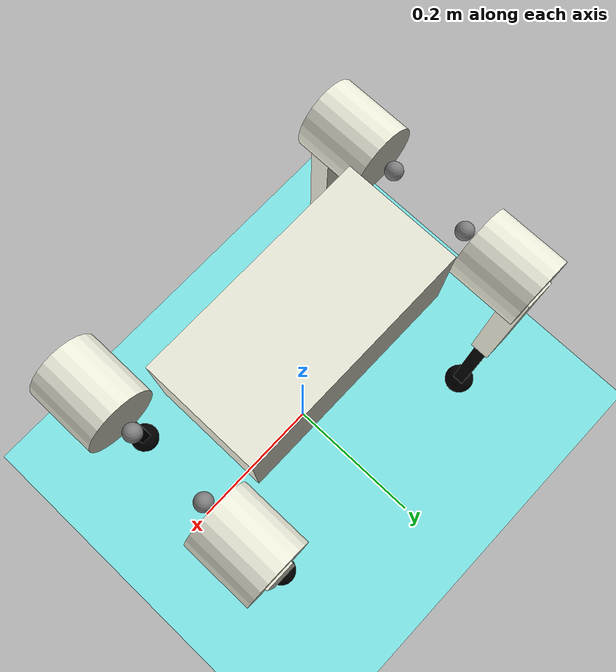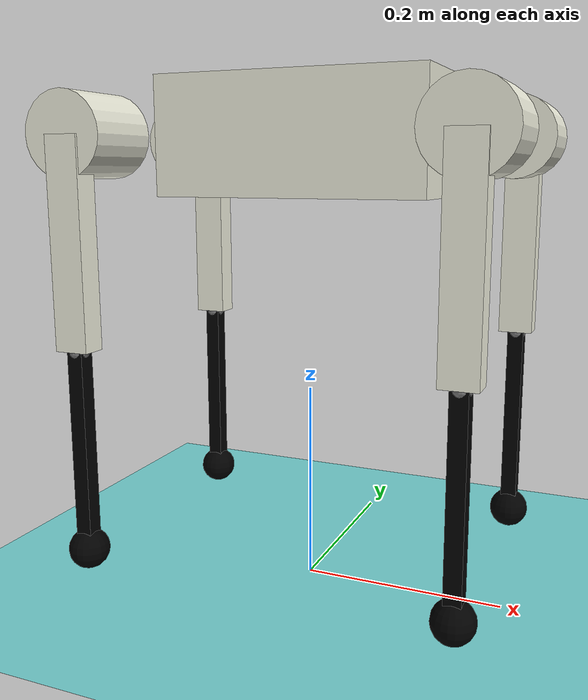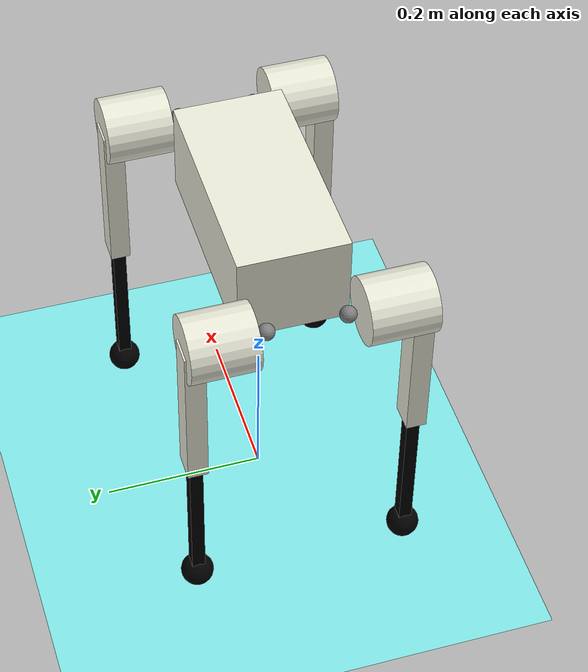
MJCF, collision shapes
<mujoco model="a1_description">
    <compiler angle="radian" eulerseq='xyz' meshdir="a1mesh/" />
    <visual>
        <!--headlight ambient="0.5 0.5 0.5"/-->
        <!--headlight diffuse="0.4 0.4 0.4"/-->
    </visual>
    <size njmax="500" nconmax="100" />
    <option gravity='0 0 -9.81' iterations='50' solver='Newton' timestep='0.0005'/>

    <default>
        <geom contype="1" conaffinity="1" friction="0.6 0.3 0.3" rgba="0.5 0.6 0.7 1" margin="0.001" group="0"/>

        <light castshadow="false" diffuse="1 1 1"/>
        <motor ctrlrange="-33.5 33.5" ctrllimited="true"/>
        <camera fovy="60"/>
        <joint damping="0.01" armature="0.01" frictionloss="0.2" />

    </default>

    <asset>
        <mesh name="trunk" file="trunk.stl" />
        <mesh name="hip" file="hip.stl" />
        <mesh name="thigh_mirror" file="thigh_mirror.stl" />
        <mesh name="calf" file="calf.stl" />
        <mesh name="thigh" file="thigh.stl" />
    </asset>

    <asset>
      <material name='plane' reflectance='0' texrepeat='1 1' texture='plane' texuniform='true'/>
      <material name='robot' rgba='0.9 0.5 0.1 1'/>
      <texture builtin='checker' height='512' name='plane' rgb1='0.2 0.2 0.2' rgb2='0.4 0.4 0.4' type='2d' width='512'/>
      <texture builtin='gradient' height='128' rgb1='0.6 0.8 1' rgb2='0 0 0' type='skybox' width='128'/>
      <!--texture type="skybox" builtin="gradient" rgb1="1.0 1.0 1.0" rgb2="1.0 1.0 1.0" width="512" height="512"/-->
        <!--texture name="plane" type="2d" builtin="flat" rgb1="1 1 1" rgb2="1 1 1" width="512" height="512" mark="cross" markrgb="0 0 0"/-->
        <!--material name="plane" reflectance="0.0" texture="plane" texrepeat="3 3" texuniform="true"/-->
    </asset>

    <visual>
        <rgba com="0.502 1.0 0 0.5" contactforce="0.98 0.4 0.4 0.7" contactpoint="1.0 1.0 0.6 0.4"/>
        <scale com="0.2" forcewidth="0.035" contactwidth="0.10" contactheight="0.04"/>
    </visual>

    <worldbody>
        <light directional="true" diffuse=".8 .8 .8" pos="0 0 10" dir="0 0 -10"/>
        <camera name="track" mode="trackcom" pos="0 -1.3 1.6" xyaxes="1 0 0 0 0.707 0.707"/>
        <geom name='floor' type='plane' conaffinity='1' condim='3' contype='1' rgba="0.5 0.9 0.9 0.1" material='plane' pos='0 0 0' size='0 0 1'/>

        <body name="trunk" pos="0 0 0.45" euler='0 0 0'> <!--pranav's orgin is pos="0 0 0.45"-->>
            <inertial pos="0.0127283 0.00218554 0.000514891" quat="0.00186575 0.711506 0.000389649 0.702677" mass="4.714" diaginertia="0.0648213 0.0565803 0.0169323" />
            <joint type="free" />
            <geom type="mesh" contype="0" conaffinity="0" group="1" rgba="0.913725 0.913725 0.847059 1" mesh="trunk" />
            <geom size="0.1335 0.066 0.057" type="box" rgba="0.913725 0.913725 0.847059 0" />
            <geom size="0.0005 0.0005 0.0005" type="box" contype="0" conaffinity="0" group="1" rgba="0.8 0 0 0" />
            <geom size="0.0005 0.0005 0.0005" type="box" rgba="0.8 0 0 0" />
            <site name="imu" pos="0 0 0"/>

            <body name="FR_hip" pos="0.183 -0.047 0">
                <inertial pos="-0.003311 -0.000635 3.1e-05" quat="0.507528 0.506268 0.491507 0.494499" mass="0.696" diaginertia="0.000807752 0.00055293 0.000468983" />
                <joint name="FR_hip_joint" pos="0 0 0" axis="1 0 0" limited="true" range="-0.802851 0.802851" />
                <geom quat="0 1 0 0" type="mesh" contype="0" conaffinity="0" group="1" rgba="0.913725 0.913725 0.847059 1" mesh="hip" />
                <geom size="0.04 0.04" pos="0 -0.055 0" quat="0.707107 0.707107 0 0" type="cylinder" rgba="0.913725 0.913725 0.847059 0" />
                <site name='FR_shoulder' pos='0 0 0' quat='1 0 0 0' size='0.01'/> <!-- added-->
                <body name="FR_thigh" pos="0 -0.08505 0">
                    <inertial pos="-0.003237 0.022327 -0.027326" quat="0.999125 -0.00256393 -0.0409531 -0.00806091" mass="1.013" diaginertia="0.00555739 0.00513936 0.00133944" />
                    <joint name="FR_thigh_joint" pos="0 0 0" axis="0 1 0" limited="true" range="-1.0472 4.18879" />
                    <geom type="mesh" contype="0" conaffinity="0" group="1" rgba="0.913725 0.913725 0.847059 1" mesh="thigh_mirror" />
                    <geom size="0.1 0.01225 0.017" pos="0 0 -0.1" quat="0.707107 0 0.707107 0" type="box" rgba="0.913725 0.913725 0.847059 0" />
                    <body name="FR_calf" pos="0 0 -0.2">
                        <inertial pos="0.00472659 0 -0.131975" quat="0.706886 0.017653 0.017653 0.706886" mass="0.226" diaginertia="0.00340344 0.00339393 3.54834e-05" />
                        <joint name="FR_calf_joint" pos="0 0 0" axis="0 1 0" limited="true" range="-2.69653 -0.916298" />
                        <geom type="mesh" contype="0" conaffinity="0" group="1" rgba="0 0 0 1" mesh="calf" />
                        <geom size="0.1 0.008 0.008" pos="0 0 -0.1" quat="0.707107 0 0.707107 0" type="box" rgba="0 0 0 0" />
                        <geom size="0.01" pos="0 0 -0.2" contype="0" conaffinity="0" group="1" rgba="0 0 0 1" />
                        <geom size="0.02" pos="0 0 -0.2" rgba="0 0 0 1" />
                        <site name='FR_elbow' pos='0 0 0' quat='1 0 0 0' size='0.01'/> <!-- added-->
                        <site name='FR_foot' pos='0 0 -0.2' quat='1 0 0 0' size='0.01'/> <!-- added-->
                        <site name="FR_contact" pos='0 0 -0.2' size='0.025' rgba="1 1 1 0"/> <!-- added-->
                    </body>
                </body>
            </body>
            <body name="FL_hip" pos="0.183 0.047 0">
                <inertial pos="-0.003311 0.000635 3.1e-05" quat="0.494499 0.491507 0.506268 0.507528" mass="0.696" diaginertia="0.000807752 0.00055293 0.000468983" />
                <joint name="FL_hip_joint" pos="0 0 0" axis="1 0 0" limited="true" range="-0.802851 0.802851" />
                <geom type="mesh" contype="0" conaffinity="0" group="1" rgba="0.913725 0.913725 0.847059 1" mesh="hip" />
                <geom size="0.04 0.04" pos="0 0.055 0" quat="0.707107 0.707107 0 0" type="cylinder" rgba="0.913725 0.913725 0.847059 0" />
                <site name='FL_shoulder' pos='0 0 0' quat='1 0 0 0' size='0.01'/> <!-- added-->
                <body name="FL_thigh" pos="0 0.08505 0">
                    <inertial pos="-0.003237 -0.022327 -0.027326" quat="0.999125 0.00256393 -0.0409531 0.00806091" mass="1.013" diaginertia="0.00555739 0.00513936 0.00133944" />
                    <joint name="FL_thigh_joint" pos="0 0 0" axis="0 1 0" limited="true" range="-1.0472 4.18879" />
                    <geom type="mesh" contype="0" conaffinity="0" group="1" rgba="0.913725 0.913725 0.847059 1" mesh="thigh" />
                    <geom size="0.1 0.01225 0.017" pos="0 0 -0.1" quat="0.707107 0 0.707107 0" type="box" rgba="0.913725 0.913725 0.847059 0" />
                    <body name="FL_calf" pos="0 0 -0.2">
                        <inertial pos="0.00472659 0 -0.131975" quat="0.706886 0.017653 0.017653 0.706886" mass="0.226" diaginertia="0.00340344 0.00339393 3.54834e-05" />
                        <joint name="FL_calf_joint" pos="0 0 0" axis="0 1 0" limited="true" range="-2.69653 -0.916298" />
                        <geom type="mesh" contype="0" conaffinity="0" group="1" rgba="0 0 0 1" mesh="calf" />
                        <geom size="0.1 0.008 0.008" pos="0 0 -0.1" quat="0.707107 0 0.707107 0" type="box" rgba="0 0 0 0" />
                        <geom size="0.01" pos="0 0 -0.2" contype="0" conaffinity="0" group="1" rgba="0 0 0 1" />
                        <geom size="0.02" pos="0 0 -0.2" rgba="0 0 0 1" />
                        <site name='FL_elbow' pos='0 0 0' quat='1 0 0 0' size='0.01'/> <!-- added-->
                        <site name='FL_foot' pos='0 0 -0.2' quat='1 0 0 0' size='0.01'/> <!-- added-->
                        <site name="FL_contact" pos='0 0 -0.2' size='0.025' rgba="1 1 1 0"/> <!-- added-->
                    </body>
                </body>
            </body>
            <body name="RR_hip" pos="-0.183 -0.047 0">
                <inertial pos="0.003311 -0.000635 3.1e-05" quat="0.491507 0.494499 0.507528 0.506268" mass="0.696" diaginertia="0.000807752 0.00055293 0.000468983" />
                <joint name="RR_hip_joint" pos="0 0 0" axis="1 0 0" limited="true" range="-0.802851 0.802851" />
                <geom quat="0 0 0 -1" type="mesh" contype="0" conaffinity="0" group="1" rgba="0.913725 0.913725 0.847059 1" mesh="hip" />
                <geom size="0.04 0.04" pos="0 -0.055 0" quat="0.707107 0.707107 0 0" type="cylinder" rgba="0.913725 0.913725 0.847059 0" />
                <site name='RR_shoulder' pos='0 0 0' quat='1 0 0 0' size='0.01'/> <!-- added-->
                <body name="RR_thigh" pos="0 -0.08505 0">
                    <inertial pos="-0.003237 0.022327 -0.027326" quat="0.999125 -0.00256393 -0.0409531 -0.00806091" mass="1.013" diaginertia="0.00555739 0.00513936 0.00133944" />
                    <joint name="RR_thigh_joint" pos="0 0 0" axis="0 1 0" limited="true" range="-1.0472 4.18879" />
                    <geom type="mesh" contype="0" conaffinity="0" group="1" rgba="0.913725 0.913725 0.847059 1" mesh="thigh_mirror" />
                    <geom size="0.1 0.01225 0.017" pos="0 0 -0.1" quat="0.707107 0 0.707107 0" type="box" rgba="0.913725 0.913725 0.847059 0" />
                    <body name="RR_calf" pos="0 0 -0.2">
                        <inertial pos="0.00472659 0 -0.131975" quat="0.706886 0.017653 0.017653 0.706886" mass="0.226" diaginertia="0.00340344 0.00339393 3.54834e-05" />
                        <joint name="RR_calf_joint" pos="0 0 0" axis="0 1 0" limited="true" range="-2.69653 -0.916298" />
                        <geom type="mesh" contype="0" conaffinity="0" group="1" rgba="0 0 0 1" mesh="calf" />
                        <geom size="0.1 0.008 0.008" pos="0 0 -0.1" quat="0.707107 0 0.707107 0" type="box" rgba="0 0 0 0" />
                        <geom size="0.01" pos="0 0 -0.2" contype="0" conaffinity="0" group="1" rgba="0 0 0 1" />
                        <geom size="0.02" pos="0 0 -0.2" rgba="0 0 0 1" />
                        <site name='RR_elbow' pos='0 0 0' quat='1 0 0 0' size='0.01'/> <!-- added-->
                        <site name='RR_foot' pos='0 0 -0.2' quat='1 0 0 0' size='0.01'/> <!-- added-->
                        <site name="RR_contact" pos='0 0 -0.2' size='0.025' rgba="1 1 1 0"/> <!-- added-->
                    </body>
                </body>
            </body>
            <body name="RL_hip" pos="-0.183 0.047 0">
                <inertial pos="0.003311 0.000635 3.1e-05" quat="0.506268 0.507528 0.494499 0.491507" mass="0.696" diaginertia="0.000807752 0.00055293 0.000468983" />
                <joint name="RL_hip_joint" pos="0 0 0" axis="1 0 0" limited="true" range="-0.802851 0.802851" />
                <geom quat="0 0 1 0" type="mesh" contype="0" conaffinity="0" group="1" rgba="0.913725 0.913725 0.847059 1" mesh="hip" />
                <geom size="0.04 0.04" pos="0 0.055 0" quat="0.707107 0.707107 0 0" type="cylinder" rgba="0.913725 0.913725 0.847059 0" />
                <site name='RL_shoulder' pos='0 0 0' quat='1 0 0 0' size='0.01'/> <!-- added-->
                <body name="RL_thigh" pos="0 0.08505 0">
                    <inertial pos="-0.003237 -0.022327 -0.027326" quat="0.999125 0.00256393 -0.0409531 0.00806091" mass="1.013" diaginertia="0.00555739 0.00513936 0.00133944" />
                    <joint name="RL_thigh_joint" pos="0 0 0" axis="0 1 0" limited="true" range="-1.0472 4.18879" />
                    <geom type="mesh" contype="0" conaffinity="0" group="1" rgba="0.913725 0.913725 0.847059 1" mesh="thigh" />
                    <geom size="0.1 0.01225 0.017" pos="0 0 -0.1" quat="0.707107 0 0.707107 0" type="box" rgba="0.913725 0.913725 0.847059 0" />
                    <body name="RL_calf" pos="0 0 -0.2">
                        <inertial pos="0.00472659 0 -0.131975" quat="0.706886 0.017653 0.017653 0.706886" mass="0.226" diaginertia="0.00340344 0.00339393 3.54834e-05" />
                        <joint name="RL_calf_joint" pos="0 0 0" axis="0 1 0" limited="true" range="-2.69653 -0.916298" />
                        <geom type="mesh" contype="0" conaffinity="0" group="1" rgba="0 0 0 1" mesh="calf" />
                        <geom size="0.1 0.008 0.008" pos="0 0 -0.1" quat="0.707107 0 0.707107 0" type="box" rgba="0 0 0 0" />
                        <geom size="0.01" pos="0 0 -0.2" contype="0" conaffinity="0" group="1" rgba="0 0 0 1" />
                        <geom size="0.02" pos="0 0 -0.2" rgba="0 0 0 1" />
                        <site name='RL_elbow' pos='0 0 0' quat='1 0 0 0' size='0.01'/> <!-- added-->
                        <site name='RL_foot' pos='0 0 -0.2' quat='1 0 0 0' size='0.01'/> <!-- added-->
                        <site name="RL_contact" pos='0 0 -0.2' size='0.025' rgba="1 1 1 0"/> <!-- added-->
                    </body>
                </body>
            </body>
        </body>
    </worldbody>
    <actuator>
        <motor name="FR_hip"       gear="1" joint="FR_hip_joint"/>
        <motor name="FR_thigh"       gear="1" joint="FR_thigh_joint"/>
        <motor name="FR_calf"       gear="1" joint="FR_calf_joint"/>
        <motor name="FL_hip"     gear="1" joint="FL_hip_joint"/>
        <motor name="FL_thigh"     gear="1" joint="FL_thigh_joint"/>
        <motor name="FL_calf"     gear="1" joint="FL_calf_joint"/>
        <motor name="RR_hip"      gear="1" joint="RR_hip_joint"/>
        <motor name="RR_thigh"   gear="1" joint="RR_thigh_joint"/>
        <motor name="RR_calf"   gear="1" joint="RR_calf_joint" />
        <motor name="RL_hip"      gear="1" joint="RL_hip_joint"/>
        <motor name="RL_thigh"      gear="1" joint="RL_thigh_joint"/>
        <motor name="RL_calf"      gear="1" joint="RL_calf_joint"/>
    </actuator>

    <sensor>

        <jointpos name="FR_hip_pos"     joint="FR_hip_joint"/>
        <jointpos name="FR_thigh_pos"   joint="FR_thigh_joint"/>
        <jointpos name="FR_calf_pos"    joint="FR_calf_joint"/>
        <jointpos name="FL_hip_pos"     joint="FL_hip_joint"/>
        <jointpos name="FL_thigh_pos"   joint="FL_thigh_joint"/>
        <jointpos name="FL_calf_pos"    joint="FL_calf_joint"/>
        <jointpos name="RR_hip_pos"     joint="RR_hip_joint"/>
        <jointpos name="RR_thigh_pos"   joint="RR_thigh_joint"/>
        <jointpos name="RR_calf_pos"    joint="RR_calf_joint" />
        <jointpos name="RL_hip_pos"     joint="RL_hip_joint"/>
        <jointpos name="RL_thigh_pos"   joint="RL_thigh_joint"/>
        <jointpos name="RL_calf_pos"    joint="RL_calf_joint"/>

        <jointvel name="FR_hip_vel"     joint="FR_hip_joint"/>
        <jointvel name="FR_thigh_vel"   joint="FR_thigh_joint"/>
        <jointvel name="FR_calf_vel"    joint="FR_calf_joint"/>
        <jointvel name="FL_hip_vel"     joint="FL_hip_joint"/>
        <jointvel name="FL_thigh_vel"   joint="FL_thigh_joint"/>
        <jointvel name="FL_calf_vel"    joint="FL_calf_joint"/>
        <jointvel name="RR_hip_vel"     joint="RR_hip_joint"/>
        <jointvel name="RR_thigh_vel"   joint="RR_thigh_joint"/>
        <jointvel name="RR_calf_vel"    joint="RR_calf_joint" />
        <jointvel name="RL_hip_vel"     joint="RL_hip_joint"/>
        <jointvel name="RL_thigh_vel"   joint="RL_thigh_joint"/>
        <jointvel name="RL_calf_vel"    joint="RL_calf_joint"/>

        <accelerometer name="Body_Acc" site="imu"/>

        <gyro name="Body_Gyro" site="imu"/>

        <!--framepos name="Body_Pos" objtype=site objname="imu"/-->
        <!--framequat name="Body_Quat" objtype=site objname="imu"/-->

        <framepos  name='Body_Pos' objtype='xbody' objname='trunk' /> <!-- changed to xbody-->
        <framequat name='Body_Quat' objtype='xbody' objname='trunk' /> <!-- changed to xbody-->

       <framelinvel name='Body_LinVel' objtype='body' objname='trunk' />

       <framepos  name='FR_foot_pos' objtype='site' objname='FR_foot' /> <!-- added-->
       <framepos  name='FL_foot_pos' objtype='site' objname='FL_foot' /> <!-- added-->
       <framepos  name='RR_foot_pos' objtype='site' objname='RR_foot' /> <!-- added-->
       <framepos  name='RL_foot_pos' objtype='site' objname='RL_foot' /> <!-- added-->

       <framepos  name='FR_shoulder_pos' objtype='site' objname='FR_shoulder' /> <!-- added-->
       <framepos  name='FL_shoulder_pos' objtype='site' objname='FL_shoulder' /> <!-- added-->
       <framepos  name='RR_shoulder_pos' objtype='site' objname='RR_shoulder' /> <!-- added-->
       <framepos  name='RL_shoulder_pos' objtype='site' objname='RL_shoulder' /> <!-- added-->

       <framepos  name='FR_elbow_pos' objtype='site' objname='FR_elbow' /> <!-- added-->
       <framepos  name='FL_elbow_pos' objtype='site' objname='FL_elbow' /> <!-- added-->
       <framepos  name='RR_elbow_pos' objtype='site' objname='RR_elbow' /> <!-- added-->
       <framepos  name='RL_elbow_pos' objtype='site' objname='RL_elbow' /> <!-- added-->

       <subtreecom  name='robot_com' body='trunk' /> <!-- added-->

       <framelinvel  name='FR_foot_vel' objtype='site' objname='FR_foot' /> <!-- added-->
       <framelinvel  name='FL_foot_vel' objtype='site' objname='FL_foot' /> <!-- added-->
       <framelinvel  name='RR_foot_vel' objtype='site' objname='RR_foot' /> <!-- added-->
       <framelinvel  name='RL_foot_vel' objtype='site' objname='RL_foot' /> <!-- added-->

       <framelinvel  name='FR_shoulder_vel' objtype='site' objname='FR_shoulder' /> <!-- added-->
       <framelinvel  name='FL_shoulder_vel' objtype='site' objname='FL_shoulder' /> <!-- added-->
       <framelinvel  name='RR_shoulder_vel' objtype='site' objname='RR_shoulder' /> <!-- added-->
       <framelinvel  name='RL_shoulder_vel' objtype='site' objname='RL_shoulder' /> <!-- added-->

       <touch name="FR_footForce" site="FR_contact"/> <!-- added-->
       <touch name="FL_footForce" site="FL_contact"/> <!-- added-->
       <touch name="RR_footForce" site="RR_contact"/> <!-- added-->
       <touch name="RL_footForce" site="RL_contact"/> <!-- added-->

    </sensor>

</mujoco>
